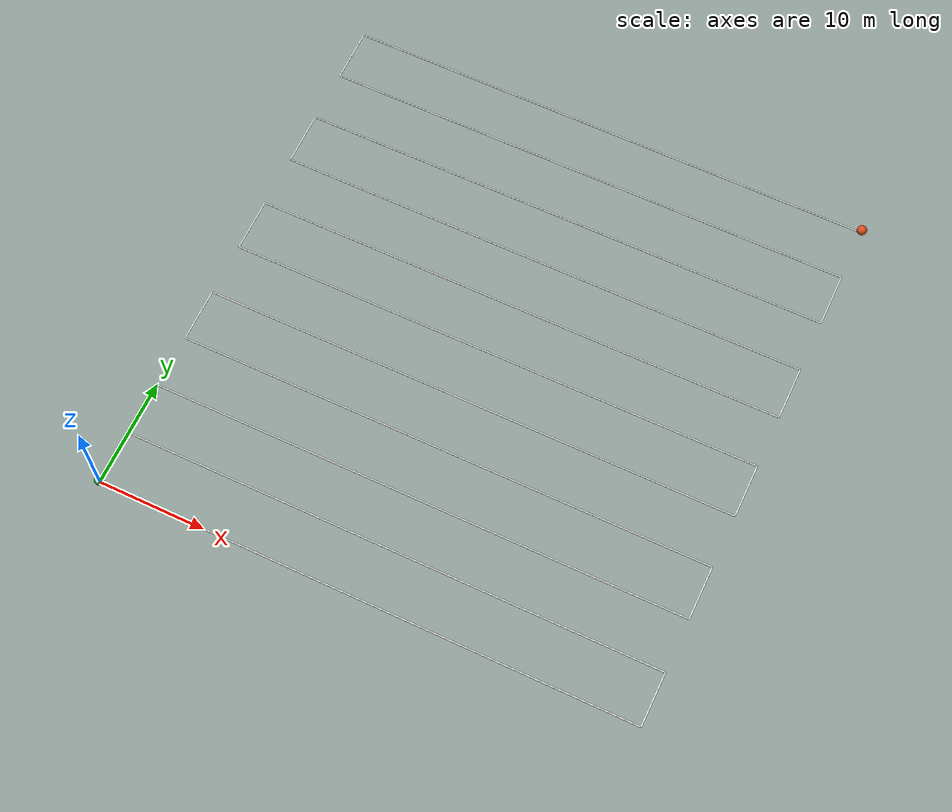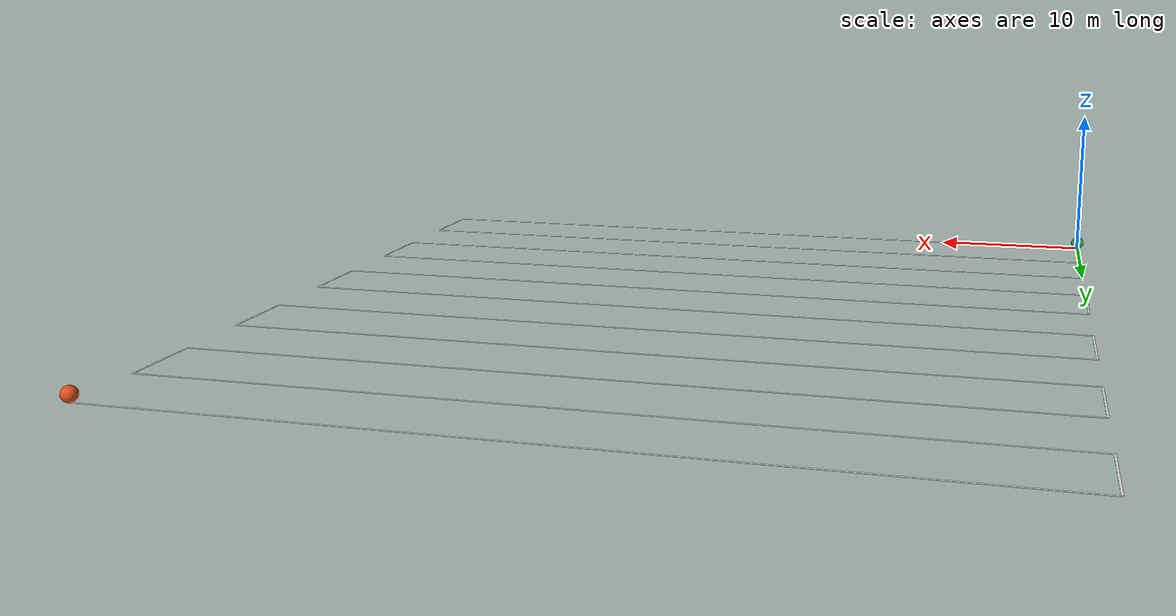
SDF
<?xml version="1.0"?>
<sdf version="1.9">
  <model name="survey_path">
    <static>true</static>
    <link name="segment_0">
      <pose>25.000 0.000 0.010 0 0 0.0000</pose>
      <visual name="visual">
        <geometry><box><size>50.000 0.12 0.02</size></box></geometry>
        <material>
          <ambient>0.85 0.85 0.85 1</ambient>
          <diffuse>0.95 0.95 0.95 1</diffuse>
          <emissive>0.35 0.35 0.35 1</emissive>
        </material>
      </visual>
    </link>
    <link name="segment_1">
      <pose>50.000 2.500 0.010 0 0 1.5708</pose>
      <visual name="visual">
        <geometry><box><size>5.000 0.12 0.02</size></box></geometry>
        <material>
          <ambient>0.85 0.85 0.85 1</ambient>
          <diffuse>0.95 0.95 0.95 1</diffuse>
          <emissive>0.35 0.35 0.35 1</emissive>
        </material>
      </visual>
    </link>
    <link name="segment_2">
      <pose>25.000 5.000 0.010 0 0 3.1416</pose>
      <visual name="visual">
        <geometry><box><size>50.000 0.12 0.02</size></box></geometry>
        <material>
          <ambient>0.85 0.85 0.85 1</ambient>
          <diffuse>0.95 0.95 0.95 1</diffuse>
          <emissive>0.35 0.35 0.35 1</emissive>
        </material>
      </visual>
    </link>
    <link name="segment_3">
      <pose>0.000 7.500 0.010 0 0 1.5708</pose>
      <visual name="visual">
        <geometry><box><size>5.000 0.12 0.02</size></box></geometry>
        <material>
          <ambient>0.85 0.85 0.85 1</ambient>
          <diffuse>0.95 0.95 0.95 1</diffuse>
          <emissive>0.35 0.35 0.35 1</emissive>
        </material>
      </visual>
    </link>
    <link name="segment_4">
      <pose>25.000 10.000 0.010 0 0 0.0000</pose>
      <visual name="visual">
        <geometry><box><size>50.000 0.12 0.02</size></box></geometry>
        <material>
          <ambient>0.85 0.85 0.85 1</ambient>
          <diffuse>0.95 0.95 0.95 1</diffuse>
          <emissive>0.35 0.35 0.35 1</emissive>
        </material>
      </visual>
    </link>
    <link name="segment_5">
      <pose>50.000 12.500 0.010 0 0 1.5708</pose>
      <visual name="visual">
        <geometry><box><size>5.000 0.12 0.02</size></box></geometry>
        <material>
          <ambient>0.85 0.85 0.85 1</ambient>
          <diffuse>0.95 0.95 0.95 1</diffuse>
          <emissive>0.35 0.35 0.35 1</emissive>
        </material>
      </visual>
    </link>
    <link name="segment_6">
      <pose>25.000 15.000 0.010 0 0 3.1416</pose>
      <visual name="visual">
        <geometry><box><size>50.000 0.12 0.02</size></box></geometry>
        <material>
          <ambient>0.85 0.85 0.85 1</ambient>
          <diffuse>0.95 0.95 0.95 1</diffuse>
          <emissive>0.35 0.35 0.35 1</emissive>
        </material>
      </visual>
    </link>
    <link name="segment_7">
      <pose>0.000 17.500 0.010 0 0 1.5708</pose>
      <visual name="visual">
        <geometry><box><size>5.000 0.12 0.02</size></box></geometry>
        <material>
          <ambient>0.85 0.85 0.85 1</ambient>
          <diffuse>0.95 0.95 0.95 1</diffuse>
          <emissive>0.35 0.35 0.35 1</emissive>
        </material>
      </visual>
    </link>
    <link name="segment_8">
      <pose>25.000 20.000 0.010 0 0 0.0000</pose>
      <visual name="visual">
        <geometry><box><size>50.000 0.12 0.02</size></box></geometry>
        <material>
          <ambient>0.85 0.85 0.85 1</ambient>
          <diffuse>0.95 0.95 0.95 1</diffuse>
          <emissive>0.35 0.35 0.35 1</emissive>
        </material>
      </visual>
    </link>
    <link name="segment_9">
      <pose>50.000 22.500 0.010 0 0 1.5708</pose>
      <visual name="visual">
        <geometry><box><size>5.000 0.12 0.02</size></box></geometry>
        <material>
          <ambient>0.85 0.85 0.85 1</ambient>
          <diffuse>0.95 0.95 0.95 1</diffuse>
          <emissive>0.35 0.35 0.35 1</emissive>
        </material>
      </visual>
    </link>
    <link name="segment_10">
      <pose>25.000 25.000 0.010 0 0 3.1416</pose>
      <visual name="visual">
        <geometry><box><size>50.000 0.12 0.02</size></box></geometry>
        <material>
          <ambient>0.85 0.85 0.85 1</ambient>
          <diffuse>0.95 0.95 0.95 1</diffuse>
          <emissive>0.35 0.35 0.35 1</emissive>
        </material>
      </visual>
    </link>
    <link name="segment_11">
      <pose>0.000 27.500 0.010 0 0 1.5708</pose>
      <visual name="visual">
        <geometry><box><size>5.000 0.12 0.02</size></box></geometry>
        <material>
          <ambient>0.85 0.85 0.85 1</ambient>
          <diffuse>0.95 0.95 0.95 1</diffuse>
          <emissive>0.35 0.35 0.35 1</emissive>
        </material>
      </visual>
    </link>
    <link name="segment_12">
      <pose>25.000 30.000 0.010 0 0 0.0000</pose>
      <visual name="visual">
        <geometry><box><size>50.000 0.12 0.02</size></box></geometry>
        <material>
          <ambient>0.85 0.85 0.85 1</ambient>
          <diffuse>0.95 0.95 0.95 1</diffuse>
          <emissive>0.35 0.35 0.35 1</emissive>
        </material>
      </visual>
    </link>
    <link name="segment_13">
      <pose>50.000 32.500 0.010 0 0 1.5708</pose>
      <visual name="visual">
        <geometry><box><size>5.000 0.12 0.02</size></box></geometry>
        <material>
          <ambient>0.85 0.85 0.85 1</ambient>
          <diffuse>0.95 0.95 0.95 1</diffuse>
          <emissive>0.35 0.35 0.35 1</emissive>
        </material>
      </visual>
    </link>
    <link name="segment_14">
      <pose>25.000 35.000 0.010 0 0 3.1416</pose>
      <visual name="visual">
        <geometry><box><size>50.000 0.12 0.02</size></box></geometry>
        <material>
          <ambient>0.85 0.85 0.85 1</ambient>
          <diffuse>0.95 0.95 0.95 1</diffuse>
          <emissive>0.35 0.35 0.35 1</emissive>
        </material>
      </visual>
    </link>
    <link name="segment_15">
      <pose>0.000 37.500 0.010 0 0 1.5708</pose>
      <visual name="visual">
        <geometry><box><size>5.000 0.12 0.02</size></box></geometry>
        <material>
          <ambient>0.85 0.85 0.85 1</ambient>
          <diffuse>0.95 0.95 0.95 1</diffuse>
          <emissive>0.35 0.35 0.35 1</emissive>
        </material>
      </visual>
    </link>
    <link name="segment_16">
      <pose>25.000 40.000 0.010 0 0 0.0000</pose>
      <visual name="visual">
        <geometry><box><size>50.000 0.12 0.02</size></box></geometry>
        <material>
          <ambient>0.85 0.85 0.85 1</ambient>
          <diffuse>0.95 0.95 0.95 1</diffuse>
          <emissive>0.35 0.35 0.35 1</emissive>
        </material>
      </visual>
    </link>
    <link name="segment_17">
      <pose>50.000 42.500 0.010 0 0 1.5708</pose>
      <visual name="visual">
        <geometry><box><size>5.000 0.12 0.02</size></box></geometry>
        <material>
          <ambient>0.85 0.85 0.85 1</ambient>
          <diffuse>0.95 0.95 0.95 1</diffuse>
          <emissive>0.35 0.35 0.35 1</emissive>
        </material>
      </visual>
    </link>
    <link name="segment_18">
      <pose>25.000 45.000 0.010 0 0 3.1416</pose>
      <visual name="visual">
        <geometry><box><size>50.000 0.12 0.02</size></box></geometry>
        <material>
          <ambient>0.85 0.85 0.85 1</ambient>
          <diffuse>0.95 0.95 0.95 1</diffuse>
          <emissive>0.35 0.35 0.35 1</emissive>
        </material>
      </visual>
    </link>
    <link name="segment_19">
      <pose>0.000 47.500 0.010 0 0 1.5708</pose>
      <visual name="visual">
        <geometry><box><size>5.000 0.12 0.02</size></box></geometry>
        <material>
          <ambient>0.85 0.85 0.85 1</ambient>
          <diffuse>0.95 0.95 0.95 1</diffuse>
          <emissive>0.35 0.35 0.35 1</emissive>
        </material>
      </visual>
    </link>
    <link name="segment_20">
      <pose>25.000 50.000 0.010 0 0 0.0000</pose>
      <visual name="visual">
        <geometry><box><size>50.000 0.12 0.02</size></box></geometry>
        <material>
          <ambient>0.85 0.85 0.85 1</ambient>
          <diffuse>0.95 0.95 0.95 1</diffuse>
          <emissive>0.35 0.35 0.35 1</emissive>
        </material>
      </visual>
    </link>
    <link name="start_marker">
      <pose>0.000 0.000 0.450 0 0 0</pose>
      <visual name="visual">
        <geometry><sphere><radius>0.45</radius></sphere></geometry>
        <material>
          <ambient>0.15 0.65 0.25 1</ambient>
          <diffuse>0.15 0.65 0.25 1</diffuse>
          <emissive>0.15 0.65 0.25 1</emissive>
        </material>
      </visual>
    </link>
    <link name="end_marker">
      <pose>50.000 50.000 0.450 0 0 0</pose>
      <visual name="visual">
        <geometry><sphere><radius>0.45</radius></sphere></geometry>
        <material>
          <ambient>0.85 0.30 0.10 1</ambient>
          <diffuse>0.85 0.30 0.10 1</diffuse>
          <emissive>0.85 0.30 0.10 1</emissive>
        </material>
      </visual>
    </link>
  </model>
</sdf>
